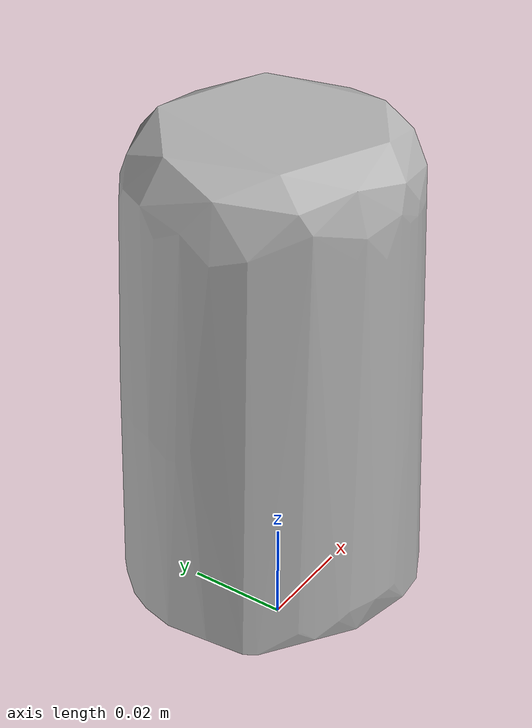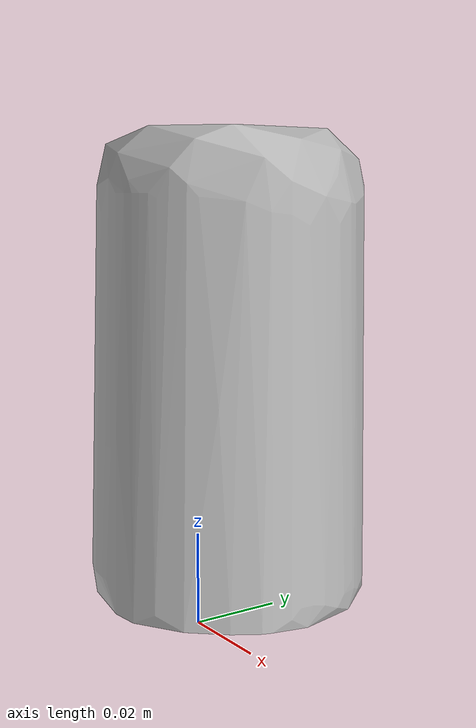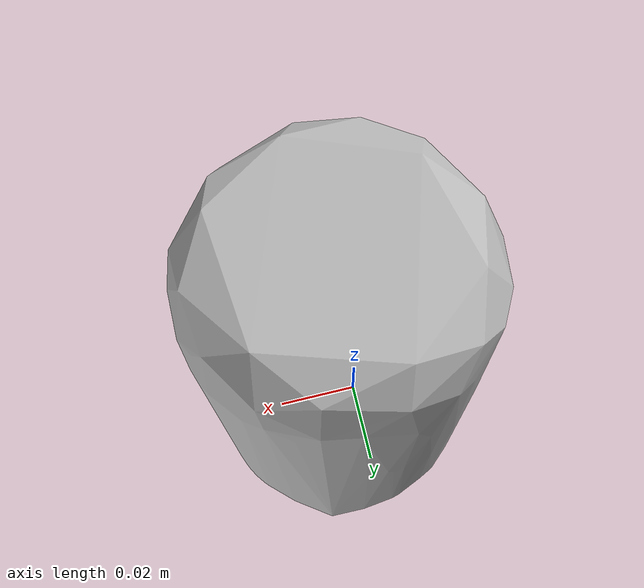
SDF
<?xml version='1.0'?>
<sdf version="1.4">
  <model name="krylon_short_cuts">
    <static>false</static>
    <link name="link">
      <inertial>
        <pose>0.004621344965247519 0.004984175099406621 0.05244273454309529 0.00848063410184626 0.014456087220125915 -0.5218652994202072</pose>
        <mass>0.024999867643932413</mass>
        <inertia>
          <ixx>2.4631649525712036e-05</ixx>
          <ixy>-6.672053007795892e-21</ixy>
          <ixz>-1.5264540383271763e-21</ixz>
          <iyy>2.447073939940364e-05</iyy>
          <iyz>2.3364449830346605e-21</iyz>
          <izz>1.0228685939203683e-05</izz>
        </inertia>
      </inertial>
      <collision name="collision">
        <geometry>
          <mesh>
            <!-- Use a downsampled mesh for collisions -->
            <uri>model:///krylon_short_cuts/krylon_short_cuts_250_collision.obj</uri>
	        </mesh>
        </geometry>
        <surface>
      </surface>
      </collision>
      <visual name="visual">
        <geometry>
          <mesh>
            <uri>model:///krylon_short_cuts/optimized_tsdf_texture_mapped_mesh.obj</uri>
	        </mesh>
        </geometry>
        <material>
          <script>
            <uri>model:///krylon_short_cuts/krylon_short_cuts.material</uri>
            <name>krylon_short_cuts</name>
          </script>
        </material>
      </visual>
    </link>
  </model>
</sdf>
